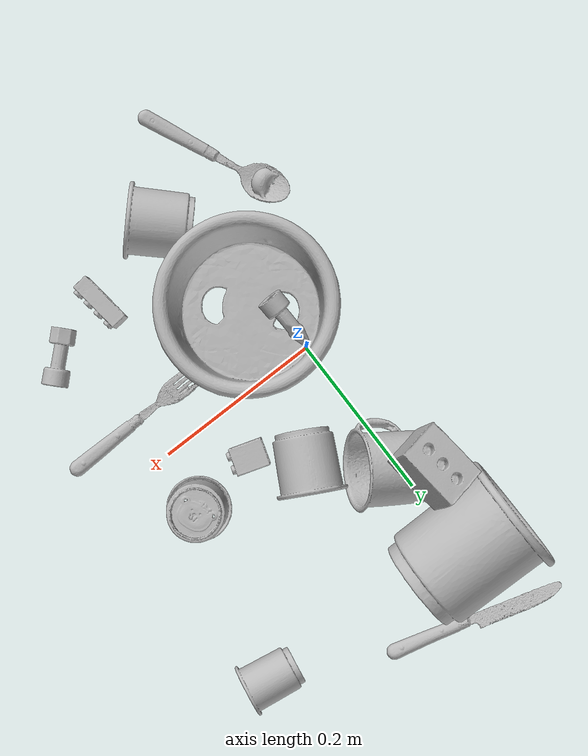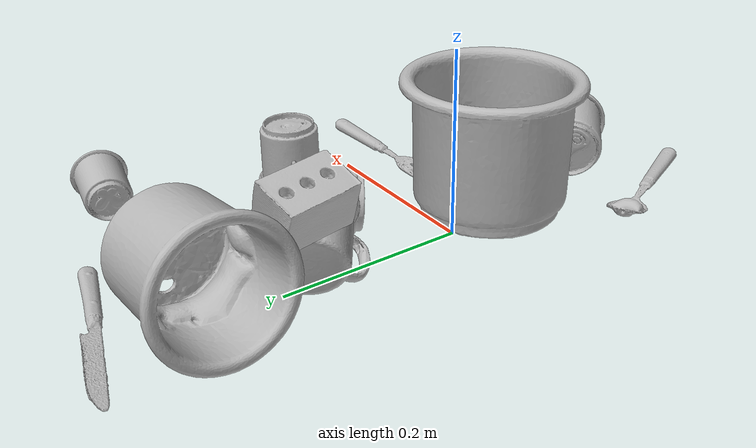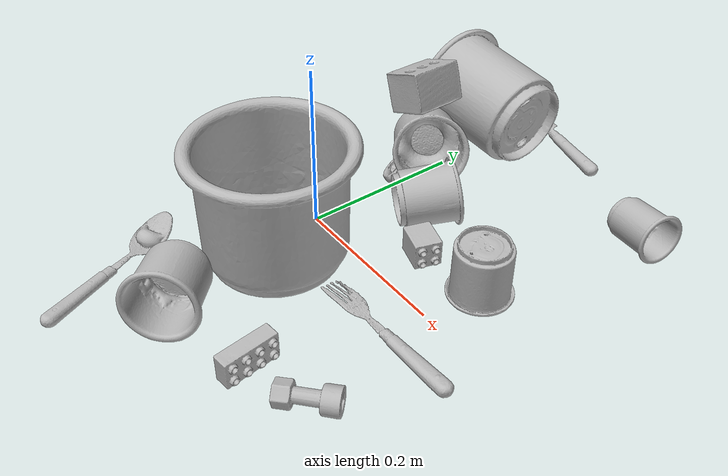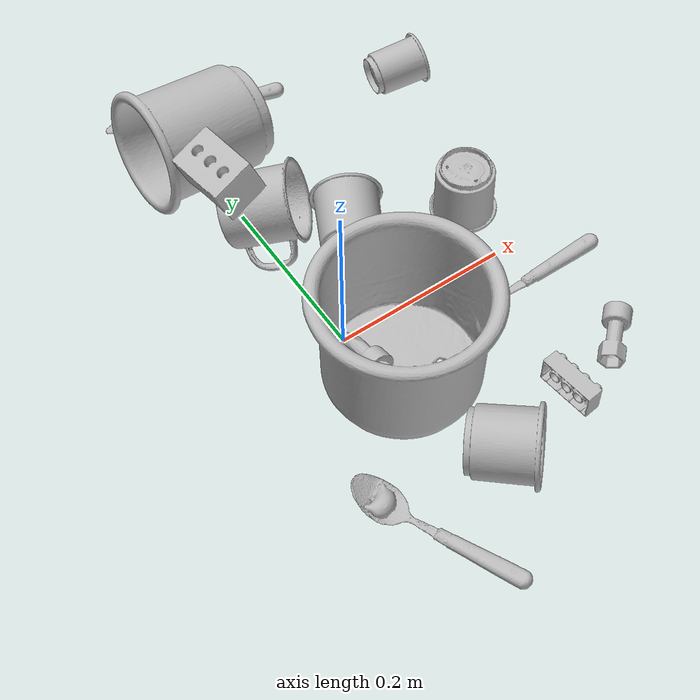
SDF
<sdf version="1.4">
  <world name="default">
    <light name="light1" type="point">
      <pose>0 0 1 0 0 0</pose>
      <diffuse>3 3 3 1</diffuse>
      <specular>3 3 3 1</specular>
    </light>
    <light name="light2" type="point">
      <pose>0 0.5 2 0 0 0</pose>
      <diffuse>1 1 1 1</diffuse>
      <specular>1 1 1 1</specular>
    </light>
    <light name="light3" type="point">
      <pose>0 0.5 2 0 0 0</pose>
      <diffuse>3 3 3 1</diffuse>
      <specular>3 3 3 1</specular>
    </light>
    <scene>
      <ambient>0.7 0.7 0.7</ambient>
    </scene>
    <model name="cup1">
      <link name="link_cup1">
        <collision name="default">
          <geometry>
            <mesh>
              <uri>model://e_cups/collision_meshes/collision.obj</uri>
              <scale>1.0 1.0 1.0</scale>
            </mesh>
          </geometry>
          <surface>
            <friction>
              <ode>
                <mu>0.5</mu>
                <mu2>0.5</mu2>
              </ode>
            </friction>
          <contact>
        <ode>
            <max_vel>0</max_vel>
            <min_depth>0.0001</min_depth>
            <kp>1e8</kp>
        </ode>
    </contact></surface>
        </collision>
        <visual name="default">
          <geometry>
            <mesh>
              <uri>model://e_cups/visual_meshes/visual.dae</uri>
              <scale>1.0 1.0 1.0</scale>
            </mesh>
          </geometry>
        </visual>
        <inertial>
          <mass>0.07679437845945358</mass>
          <pose>0.001135574304498732 0.002879783743992448 -0.0038829718250781298 0.6952411595659588 0.08767733322521654 -0.5235244631248706</pose>
          <inertia>
            <ixx>6.771342e-05</ixx>
            <iyy>7.077022e-05</iyy>
            <izz>6.4741864e-05</izz>
            <ixy>0</ixy>
            <ixz>0</ixz>
            <iyz>0</iyz>
          </inertia>
        </inertial>
      </link>
      <pose>0.20954035222530365 0.07113292068243027 0.03560689464211464 3.139696697198477 0.008252788378027827 1.5951362406415952</pose>
    </model>
    <model name="silverware1">
      <link name="link_silverware1">
        <collision name="default">
          <geometry>
            <mesh>
              <uri>model://spoon/collision_meshes/collision.obj</uri>
              <scale>1.0 1.0 1.0</scale>
            </mesh>
          </geometry>
          <surface>
            <friction>
              <ode>
                <mu>0.5</mu>
                <mu2>0.5</mu2>
              </ode>
            </friction>
          <contact>
        <ode>
            <max_vel>0</max_vel>
            <min_depth>0.0001</min_depth>
            <kp>1e8</kp>
        </ode>
    </contact></surface>
        </collision>
        <visual name="default">
          <geometry>
            <mesh>
              <uri>model://spoon/visual_meshes/visual.dae</uri>
              <scale>1.0 1.0 1.0</scale>
            </mesh>
          </geometry>
        </visual>
        <inertial>
          <mass>0.015083584003150463</mass>
          <pose>-0.005526313092559576 -0.001603418029844761 -0.000727165665011853 0.035216710638299134 -0.03906584880684835 0.006150613179751253</pose>
          <inertia>
            <ixx>8.389734e-07</ixx>
            <iyy>5.739254e-05</iyy>
            <izz>5.7806283e-05</izz>
            <ixy>0</ixy>
            <ixz>0</ixz>
            <iyz>0</iyz>
          </inertia>
        </inertial>
      </link>
      <pose>-0.05358237400650978 -0.23773445188999176 0.00838526152074337 0.0067318244667828745 0.02689299232150361 1.979576536869004</pose>
    </model>
    <model name="cup2">
      <link name="link_cup2">
        <collision name="default">
          <geometry>
            <mesh>
              <uri>model://g_cups/collision_meshes/collision.obj</uri>
              <scale>1.0 1.0 1.0</scale>
            </mesh>
          </geometry>
          <surface>
            <friction>
              <ode>
                <mu>0.5</mu>
                <mu2>0.5</mu2>
              </ode>
            </friction>
          <contact>
        <ode>
            <max_vel>0</max_vel>
            <min_depth>0.0001</min_depth>
            <kp>1e8</kp>
        </ode>
    </contact></surface>
        </collision>
        <visual name="default">
          <geometry>
            <mesh>
              <uri>model://g_cups/visual_meshes/visual.dae</uri>
              <scale>1.0 1.0 1.0</scale>
            </mesh>
          </geometry>
        </visual>
        <inertial>
          <mass>0.04187431186437607</mass>
          <pose>-0.0007946277037262917 -4.2064348235726357e-05 -0.0021329382434487343 -0.21382305588888167 -0.31410659578681893 0.31120215507532384</pose>
          <inertia>
            <ixx>4.8876722e-05</ixx>
            <iyy>4.871046e-05</iyy>
            <izz>5.0627856e-05</izz>
            <ixy>0</ixy>
            <ixz>0</ixz>
            <iyz>0</iyz>
          </inertia>
        </inertial>
      </link>
      <pose>0.045561905950307846 -0.20928455889225006 0.04013867303729057 1.4550815207632057 -0.5194232481428896 0.8695795260761345</pose>
    </model>
    <model name="silverware2">
      <link name="link_silverware2">
        <collision name="default">
          <geometry>
            <mesh>
              <uri>model://fork/collision_meshes/collision.obj</uri>
              <scale>1.0 1.0 1.0</scale>
            </mesh>
          </geometry>
          <surface>
            <friction>
              <ode>
                <mu>0.5</mu>
                <mu2>0.5</mu2>
              </ode>
            </friction>
          <contact>
        <ode>
            <max_vel>0</max_vel>
            <min_depth>0.0001</min_depth>
            <kp>1e8</kp>
        </ode>
    </contact></surface>
        </collision>
        <visual name="default">
          <geometry>
            <mesh>
              <uri>model://fork/visual_meshes/visual.dae</uri>
              <scale>1.0 1.0 1.0</scale>
            </mesh>
          </geometry>
        </visual>
        <inertial>
          <mass>0.025364622473716736</mass>
          <pose>-0.029570050537586212 0.00046588227269239724 0.00032188615296036005 -0.013551666838441594 -0.010977837199147297 0.014453899745261501</pose>
          <inertia>
            <ixx>8.8917335e-07</ixx>
            <iyy>6.621973e-05</iyy>
            <izz>6.661743e-05</izz>
            <ixy>0</ixy>
            <ixz>0</ixz>
            <iyz>0</iyz>
          </inertia>
        </inertial>
      </link>
      <pose>0.20108647644519806 -0.05226386711001396 0.0074466196820139885 -3.0634968538424054 0.002835880797829951 -3.1222945854896476</pose>
    </model>
    <model name="cup3">
      <link name="link_cup3">
        <collision name="default">
          <geometry>
            <mesh>
              <uri>model://f_cups/collision_meshes/collision.obj</uri>
              <scale>1.0 1.0 1.0</scale>
            </mesh>
          </geometry>
          <surface>
            <friction>
              <ode>
                <mu>0.5</mu>
                <mu2>0.5</mu2>
              </ode>
            </friction>
          <contact>
        <ode>
            <max_vel>0</max_vel>
            <min_depth>0.0001</min_depth>
            <kp>1e8</kp>
        </ode>
    </contact></surface>
        </collision>
        <visual name="default">
          <geometry>
            <mesh>
              <uri>model://f_cups/visual_meshes/visual.dae</uri>
              <scale>1.0 1.0 1.0</scale>
            </mesh>
          </geometry>
        </visual>
        <inertial>
          <mass>0.08338716626167297</mass>
          <pose>-0.0031714679207652807 -0.0006240069633349776 -0.003655536798760295 0.7862348245142414 -0.2607950949044878 -0.18237232658982702</pose>
          <inertia>
            <ixx>7.838616e-05</ixx>
            <iyy>8.222797e-05</iyy>
            <izz>8.560161e-05</izz>
            <ixy>0</ixy>
            <ixz>0</ixz>
            <iyz>0</iyz>
          </inertia>
        </inertial>
      </link>
      <pose>0.07843013852834702 0.10340441763401031 0.03735135495662689 0.5172722031915442 -1.4661704317694462 -2.57090151663171</pose>
    </model>
    <model name="silverware3">
      <link name="link_silverware3">
        <collision name="default">
          <geometry>
            <mesh>
              <uri>model://knife/collision_meshes/collision.obj</uri>
              <scale>1.0 1.0 1.0</scale>
            </mesh>
          </geometry>
          <surface>
            <friction>
              <ode>
                <mu>0.5</mu>
                <mu2>0.5</mu2>
              </ode>
            </friction>
          <contact>
        <ode>
            <max_vel>0</max_vel>
            <min_depth>0.0001</min_depth>
            <kp>1e8</kp>
        </ode>
    </contact></surface>
        </collision>
        <visual name="default">
          <geometry>
            <mesh>
              <uri>model://knife/visual_meshes/visual.dae</uri>
              <scale>1.0 1.0 1.0</scale>
            </mesh>
          </geometry>
        </visual>
        <inertial>
          <mass>0.015509607270359993</mass>
          <pose>-0.02378525398671627 0.0015275129117071629 5.0620248657651246e-05 0.07305981518176793 0.01724841487141605 -0.0074098192082968535</pose>
          <inertia>
            <ixx>4.4022548e-07</ixx>
            <iyy>5.95854e-05</iyy>
            <izz>5.9727172e-05</izz>
            <ixy>0</ixy>
            <ixz>0</ixz>
            <iyz>0</iyz>
          </inertia>
        </inertial>
      </link>
      <pose>0.03818904235959053 0.3650634288787842 0.008136835880577564 -0.2817344552752334 -0.008871895658661479 2.8589356952024545</pose>
    </model>
    <model name="cup4">
      <link name="link_cup4">
        <collision name="default">
          <geometry>
            <mesh>
              <uri>model://d_cups/collision_meshes/collision.obj</uri>
              <scale>2.0 2.0 2.0</scale>
            </mesh>
          </geometry>
          <surface>
            <friction>
              <ode>
                <mu>0.5</mu>
                <mu2>0.5</mu2>
              </ode>
            </friction>
          <contact>
        <ode>
            <max_vel>0</max_vel>
            <min_depth>0.0001</min_depth>
            <kp>1e8</kp>
        </ode>
    </contact></surface>
        </collision>
        <visual name="default">
          <geometry>
            <mesh>
              <uri>model://d_cups/visual_meshes/visual.dae</uri>
              <scale>2.0 2.0 2.0</scale>
            </mesh>
          </geometry>
        </visual>
        <inertial>
          <mass>0.5481204390525818</mass>
          <pose>0.001613611588254571 0.0038234798703342676 -0.0045333015732467175 0.2401214667218237 -0.2470996070340832 0.5942599316130982</pose>
          <inertia>
            <ixx>0.001835623</ixx>
            <iyy>0.0018303102</iyy>
            <izz>0.0016615508</izz>
            <ixy>0</ixy>
            <ixz>0</ixz>
            <iyz>0</iyz>
          </inertia>
        </inertial>
      </link>
      <pose>-0.00236805179156363 0.28436988592147827 0.06477990746498108 -1.4245108803605833 0.7883800566771098 1.6889980379439737</pose>
    </model>
    <model name="cup41">
      <link name="link_cup41">
        <collision name="default">
          <geometry>
            <mesh>
              <uri>model://b_cups/collision_meshes/collision.obj</uri>
              <scale>1.0 1.0 1.0</scale>
            </mesh>
          </geometry>
          <surface>
            <friction>
              <ode>
                <mu>0.5</mu>
                <mu2>0.5</mu2>
              </ode>
            </friction>
          <contact>
        <ode>
            <max_vel>0</max_vel>
            <min_depth>0.0001</min_depth>
            <kp>1e8</kp>
        </ode>
    </contact></surface>
        </collision>
        <visual name="default">
          <geometry>
            <mesh>
              <uri>model://b_cups/visual_meshes/visual.dae</uri>
              <scale>1.0 1.0 1.0</scale>
            </mesh>
          </geometry>
        </visual>
        <inertial>
          <mass>0.04462150111794472</mass>
          <pose>0.0005182005697861314 0.0018058601999655366 -0.0013381819007918239 0.11356336410280554 0.038725039404113405 -0.3456939711537357</pose>
          <inertia>
            <ixx>2.9207904e-05</ixx>
            <iyy>2.8653376e-05</iyy>
            <izz>2.45779e-05</izz>
            <ixy>0</ixy>
            <ixz>0</ixz>
            <iyz>0</iyz>
          </inertia>
        </inertial>
      </link>
      <pose>0.25883105397224426 0.27117446064949036 0.027649201452732086 -1.4304853736399252 0.8643033069621657 -1.6289714126302721</pose>
    </model>
    <model name="cup5">
      <link name="link_cup5">
        <collision name="default">
          <geometry>
            <mesh>
              <uri>model://i_cups/collision_meshes/collision.obj</uri>
              <scale>2.0 2.0 2.0</scale>
            </mesh>
          </geometry>
          <surface>
            <friction>
              <ode>
                <mu>0.5</mu>
                <mu2>0.5</mu2>
              </ode>
            </friction>
          <contact>
        <ode>
            <max_vel>0</max_vel>
            <min_depth>0.0001</min_depth>
            <kp>1e8</kp>
        </ode>
    </contact></surface>
        </collision>
        <visual name="default">
          <geometry>
            <mesh>
              <uri>model://i_cups/visual_meshes/visual.dae</uri>
              <scale>2.0 2.0 2.0</scale>
            </mesh>
          </geometry>
        </visual>
        <inertial>
          <mass>0.7183689475059509</mass>
          <pose>0.00022480347251985222 0.0003359461552463472 -0.0017158043337985873 -0.028983189607302198 -0.03987301698166741 -0.34590760218104494</pose>
          <inertia>
            <ixx>0.0039783698</ixx>
            <iyy>0.004013422</iyy>
            <izz>0.0044464725</izz>
            <ixy>0</ixy>
            <ixz>0</ixz>
            <iyz>0</iyz>
          </inertia>
        </inertial>
      </link>
      <pose>0.025053462013602257 -0.07047296315431595 0.07554907351732254 0.0019053785885875419 -0.0063905049562599505 2.0859487609925873</pose>
    </model>
    <model name="cup51">
      <link name="link_cup51">
        <collision name="default">
          <geometry>
            <mesh>
              <uri>model://mug/collision_meshes/collision.obj</uri>
              <scale>1.0 1.0 1.0</scale>
            </mesh>
          </geometry>
          <surface>
            <friction>
              <ode>
                <mu>0.5</mu>
                <mu2>0.5</mu2>
              </ode>
            </friction>
          <contact>
        <ode>
            <max_vel>0</max_vel>
            <min_depth>0.0001</min_depth>
            <kp>1e8</kp>
        </ode>
    </contact></surface>
        </collision>
        <visual name="default">
          <geometry>
            <mesh>
              <uri>model://mug/visual_meshes/visual.dae</uri>
              <scale>1.0 1.0 1.0</scale>
            </mesh>
          </geometry>
        </visual>
        <inertial>
          <mass>0.1239403635263443</mass>
          <pose>0.009571672417223454 0.0008143244776874781 -0.01094733364880085 -0.12983126758676797 0.08737752450174939 0.055073145905888306</pose>
          <inertia>
            <ixx>0.0001231125</ixx>
            <iyy>0.00013750937</iyy>
            <izz>0.00015903146</izz>
            <ixy>0</ixy>
            <ixz>0</ixz>
            <iyz>0</iyz>
          </inertia>
        </inertial>
      </link>
      <pose>0.005575031042098999 0.15610769391059875 0.041527580469846725 1.191964193084201 -0.662985189357337 1.2002203958695192</pose>
    </model>
    <model name="toy1">
      <link name="link_toy1">
        <collision name="default">
          <geometry>
            <mesh>
              <uri>model://e_toy_airplane/collision_meshes/collision.obj</uri>
              <scale>1.0 1.0 1.0</scale>
            </mesh>
          </geometry>
          <surface>
            <friction>
              <ode>
                <mu>0.5</mu>
                <mu2>0.5</mu2>
              </ode>
            </friction>
          <contact>
        <ode>
            <max_vel>0</max_vel>
            <min_depth>0.0001</min_depth>
            <kp>1e8</kp>
        </ode>
    </contact></surface>
        </collision>
        <visual name="default">
          <geometry>
            <mesh>
              <uri>model://e_toy_airplane/visual_meshes/visual.dae</uri>
              <scale>1.0 1.0 1.0</scale>
            </mesh>
          </geometry>
        </visual>
        <inertial>
          <mass>0.022831259295344353</mass>
          <pose>0.00011740475019905716 -2.2482799977296963e-05 -0.011187204159796238 0.005518483498250157 0.009228324176637706 0.15041338923558414</pose>
          <inertia>
            <ixx>6.9683606e-06</ixx>
            <iyy>6.897077e-06</iyy>
            <izz>2.0942666e-06</izz>
            <ixy>0</ixy>
            <ixz>0</ixz>
            <iyz>0</iyz>
          </inertia>
        </inertial>
      </link>
      <pose>-0.0018036466790363193 -0.0367332324385643 0.028880244120955467 -2.0282524259164734 -1.0841129705056418 0.45086697242393187</pose>
    </model>
    <model name="toy2">
      <link name="link_toy2">
        <collision name="default">
          <geometry>
            <mesh>
              <uri>model://c_toy_airplane/collision_meshes/collision.obj</uri>
              <scale>1.0 1.0 1.0</scale>
            </mesh>
          </geometry>
          <surface>
            <friction>
              <ode>
                <mu>0.5</mu>
                <mu2>0.5</mu2>
              </ode>
            </friction>
          <contact>
        <ode>
            <max_vel>0</max_vel>
            <min_depth>0.0001</min_depth>
            <kp>1e8</kp>
        </ode>
    </contact></surface>
        </collision>
        <visual name="default">
          <geometry>
            <mesh>
              <uri>model://c_toy_airplane/visual_meshes/visual.dae</uri>
              <scale>1.0 1.0 1.0</scale>
            </mesh>
          </geometry>
        </visual>
        <inertial>
          <mass>0.014964861795306206</mass>
          <pose>-0.00023024252732284367 -4.4292315237726143e-07 -0.006080531980842352 -0.006193085961310731 -0.016797608001683555 0.7655123908688324</pose>
          <inertia>
            <ixx>6.871557e-06</ixx>
            <iyy>6.852165e-06</iyy>
            <izz>1.6133057e-06</izz>
            <ixy>0</ixy>
            <ixz>0</ixz>
            <iyz>0</iyz>
          </inertia>
        </inertial>
      </link>
      <pose>0.22878237068653107 -0.16285015642642975 0.015065095387399197 1.5811108019260425 -0.5804303544016257 -0.821112674634163</pose>
    </model>
    <model name="toy3">
      <link name="link_toy3">
        <collision name="default">
          <geometry>
            <mesh>
              <uri>model://c_lego_duplo/collision_meshes/collision.obj</uri>
              <scale>1.0 1.0 1.0</scale>
            </mesh>
          </geometry>
          <surface>
            <friction>
              <ode>
                <mu>0.5</mu>
                <mu2>0.5</mu2>
              </ode>
            </friction>
          <contact>
        <ode>
            <max_vel>0</max_vel>
            <min_depth>0.0001</min_depth>
            <kp>1e8</kp>
        </ode>
    </contact></surface>
        </collision>
        <visual name="default">
          <geometry>
            <mesh>
              <uri>model://c_lego_duplo/visual_meshes/visual.dae</uri>
              <scale>1.0 1.0 1.0</scale>
            </mesh>
          </geometry>
        </visual>
        <inertial>
          <mass>0.043811071664094925</mass>
          <pose>0.00031645968556404114 0.00019464633078314364 0.0010453150607645512 -0.011520790971684333 0.005900079198968262 0.031100329952374963</pose>
          <inertia>
            <ixx>1.685932e-05</ixx>
            <iyy>5.3854724e-06</iyy>
            <izz>1.970185e-05</izz>
            <ixy>0</ixy>
            <ixz>0</ixz>
            <iyz>0</iyz>
          </inertia>
        </inertial>
      </link>
      <pose>0.15514063835144043 -0.18272145092487335 0.016402916982769966 -1.4171370166606954 1.5444111924646413 -1.3000300534339466</pose>
    </model>
    <model name="toy4">
      <link name="link_toy4">
        <collision name="default">
          <geometry>
            <mesh>
              <uri>model://foam_brick/collision_meshes/collision.obj</uri>
              <scale>1.0 1.0 1.0</scale>
            </mesh>
          </geometry>
          <surface>
            <friction>
              <ode>
                <mu>0.5</mu>
                <mu2>0.5</mu2>
              </ode>
            </friction>
          <contact>
        <ode>
            <max_vel>0</max_vel>
            <min_depth>0.0001</min_depth>
            <kp>1e8</kp>
        </ode>
    </contact></surface>
        </collision>
        <visual name="default">
          <geometry>
            <mesh>
              <uri>model://foam_brick/visual_meshes/visual.dae</uri>
              <scale>1.0 1.0 1.0</scale>
            </mesh>
          </geometry>
        </visual>
        <inertial>
          <mass>0.278400182723999</mass>
          <pose>-0.0002522472059354186 0.00034584358218126 -0.0002532101352699101 -0.2940175595239471 0.01727444673583901 -0.0007449899720057078</pose>
          <inertia>
            <ixx>0.00012161039</ixx>
            <iyy>0.00019415727</iyy>
            <izz>0.00019662478</izz>
            <ixy>0</ixy>
            <ixz>0</ixz>
            <iyz>0</iyz>
          </inertia>
        </inertial>
      </link>
      <pose>-0.027568697929382324 0.1867004781961441 0.10721111297607422 -0.33846674230151497 0.07868106862336725 1.6824350189871071</pose>
    </model>
    <model name="toy5">
      <link name="link_toy5">
        <collision name="default">
          <geometry>
            <mesh>
              <uri>model://f_lego_duplo/collision_meshes/collision.obj</uri>
              <scale>1.0 1.0 1.0</scale>
            </mesh>
          </geometry>
          <surface>
            <friction>
              <ode>
                <mu>0.5</mu>
                <mu2>0.5</mu2>
              </ode>
            </friction>
          <contact>
        <ode>
            <max_vel>0</max_vel>
            <min_depth>0.0001</min_depth>
            <kp>1e8</kp>
        </ode>
    </contact></surface>
        </collision>
        <visual name="default">
          <geometry>
            <mesh>
              <uri>model://f_lego_duplo/visual_meshes/visual.dae</uri>
              <scale>1.0 1.0 1.0</scale>
            </mesh>
          </geometry>
        </visual>
        <inertial>
          <mass>0.033785246312618256</mass>
          <pose>2.369392132095527e-05 0.00013393175322562456 0.0018837875686585903 0.029838526741840128 -0.014425189077584645 -0.6756601169838921</pose>
          <inertia>
            <ixx>7.139008e-06</ixx>
            <iyy>7.202609e-06</iyy>
            <izz>6.1969613e-06</izz>
            <ixy>0</ixy>
            <ixz>0</ixz>
            <iyz>0</iyz>
          </inertia>
        </inertial>
      </link>
      <pose>0.12863025069236755 0.058293480426073074 0.0163638424128294 0.6896214474834685 -1.5707381773357458 2.145545905824984</pose>
    </model>
  <physics type="ode">
      <max_contacts>50</max_contacts>
      <ode>
        <solver>
          <type>quick</type>
          <iters>75</iters>
        </solver>
        <constraints>
          <contact_max_correcting_vel>0</contact_max_correcting_vel>
          <contact_surface_layer>0</contact_surface_layer>
        </constraints>
      </ode>
    </physics></world>
</sdf>
